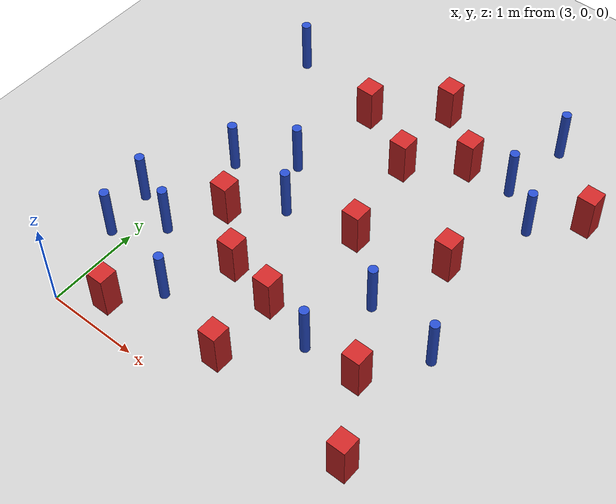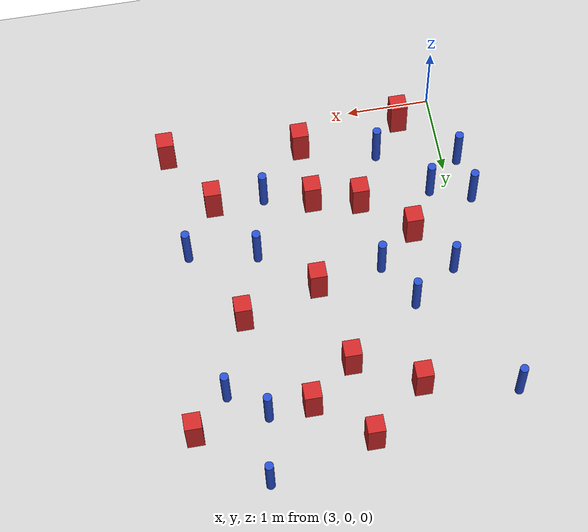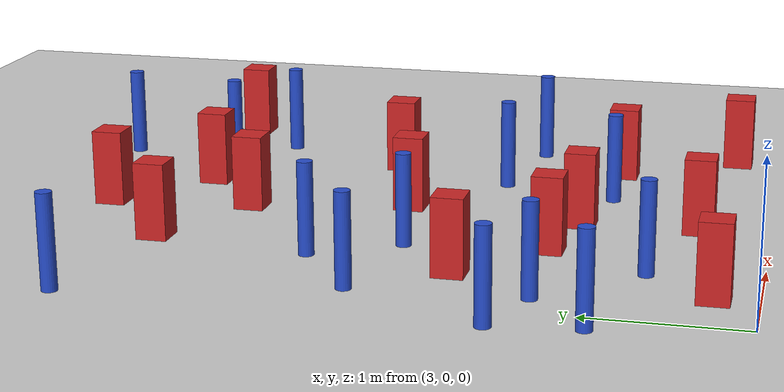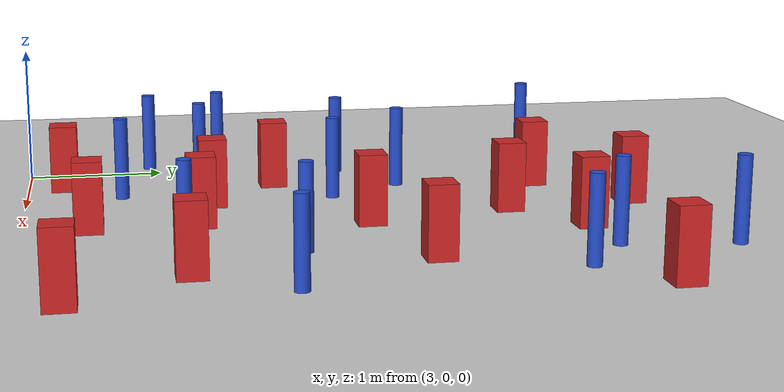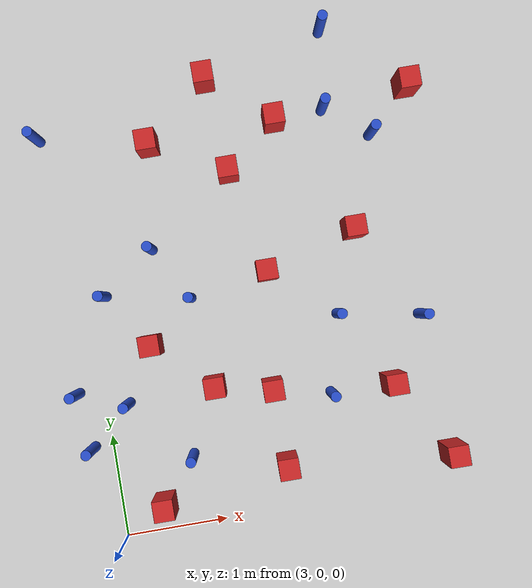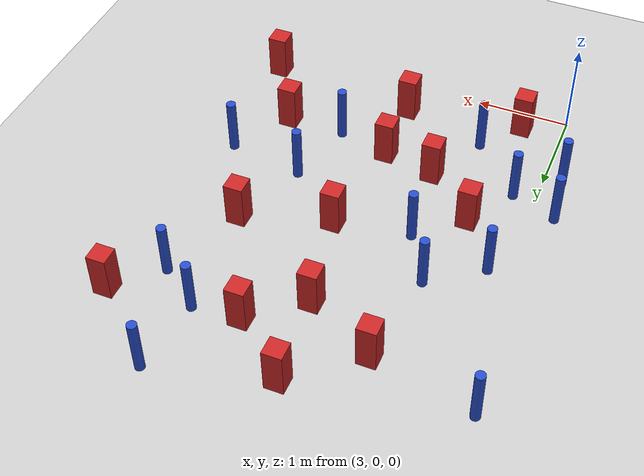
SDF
<sdf version="1.6">
 <world name="default">
  <model name="ground_plane">
   <static>1</static>
   <link name="link">
    <collision name="collision">
     <geometry><plane><normal>0 0 1</normal><size>100 100</size></plane></geometry>
     <surface><friction><ode><mu>100</mu><mu2>50</mu2></ode></friction></surface>
    </collision>
    <visual name="visual">
     <cast_shadows>0</cast_shadows>
     <geometry><plane><normal>0 0 1</normal><size>100 100</size></plane></geometry>
     <material>
      <ambient>1.0 1.0 1.0 1.0</ambient>
      <diffuse>0.8 0.8 0.8 1.0</diffuse>
      <specular>0.01 0.01 0.01 1.000000</specular>
     </material>
    </visual>
   </link>
  </model>
  <model name="pole_obstacle25">
   <static>true</static>
   <pose>2.74840885819 1.47649619067 7.38925637345e-09 -8.471706928e-08 1.24976765152e-08 -1.74513093012e-07</pose>
   <link name="link">
    <pose>0 0 0.3 0 -0 0</pose>
    <inertial>
     <mass>1</mass>
     <inertia><ixx>0.145833</ixx><ixy>0</ixy><ixz>0</ixz><iyy>0.145833</iyy><iyz>0</iyz><izz>0.125</izz></inertia>
    </inertial>
    <collision name="collision">
     <geometry><cylinder><radius>0.05</radius><length>.6</length></cylinder></geometry>
    </collision>
    <visual name="visual">
     <geometry><cylinder><radius>0.05</radius><length>.6</length></cylinder></geometry>
     <material>
      <script><name>Gazebo/Blue</name><uri>file://media/materials/scripts/gazebo.material</uri></script>
     </material>
    </visual>
   </link>
  </model>
  <model name="pole_obstacle28">
   <static>true</static>
   <pose>5.61331978366 3.88643642091 7.38925637345e-09 -8.47170692798e-08 1.24976764937e-08 -1.74513093023e-07</pose>
   <link name="link">
    <pose>0 0 0.3 0 -0 0</pose>
    <inertial>
     <mass>1</mass>
     <inertia><ixx>0.145833</ixx><ixy>0</ixy><ixz>0</ixz><iyy>0.145833</iyy><iyz>0</iyz><izz>0.125</izz></inertia>
    </inertial>
    <collision name="collision">
     <geometry><cylinder><radius>0.05</radius><length>.6</length></cylinder></geometry>
    </collision>
    <visual name="visual">
     <geometry><cylinder><radius>0.05</radius><length>.6</length></cylinder></geometry>
     <material>
      <script><name>Gazebo/Blue</name><uri>file://media/materials/scripts/gazebo.material</uri></script>
     </material>
    </visual>
   </link>
  </model>
  <model name="square_post_obstacle35">
   <static>true</static>
   <pose>4.49472661884 4.36413959373 1.91545236811e-07 -7.35059704564e-06 1.12565212e-07 2.39332434364e-05</pose>
   <link name="link">
    <pose>0 0 0.25 0 -0 0</pose>
    <inertial>
     <mass>100</mass>
     <inertia>
      <ixx>0.166667</ixx>
      <ixy>0</ixy>
      <ixz>0</ixz>
      <iyy>0.166667</iyy>
      <iyz>0</iyz>
      <izz>0.166667</izz>
     </inertia>
    </inertial>
    <collision name="collision"><geometry><box><size>.2 .2 .5</size></box></geometry></collision>
    <visual name="visual">
     <geometry><box><size>.2 .2 .5</size></box></geometry>
     <material>
      <script><name>Gazebo/Red</name><uri>file://media/materials/scripts/gazebo.material</uri></script>
     </material>
    </visual>
   </link>
  </model>
  <model name="pole_obstacle56">
   <static>true</static>
   <pose>2.81671026725 0.924290170854 7.38925637345e-09 -8.471706928e-08 1.24976765177e-08 -1.74513093012e-07</pose>
   <link name="link">
    <pose>0 0 0.3 0 -0 0</pose>
    <inertial>
     <mass>1</mass>
     <inertia><ixx>0.145833</ixx><ixy>0</ixy><ixz>0</ixz><iyy>0.145833</iyy><iyz>0</iyz><izz>0.125</izz></inertia>
    </inertial>
    <collision name="collision">
     <geometry><cylinder><radius>0.05</radius><length>.6</length></cylinder></geometry>
    </collision>
    <visual name="visual">
     <geometry><cylinder><radius>0.05</radius><length>.6</length></cylinder></geometry>
     <material>
      <script><name>Gazebo/Blue</name><uri>file://media/materials/scripts/gazebo.material</uri></script>
     </material>
    </visual>
   </link>
  </model>
  <model name="square_post_obstacle72">
   <static>true</static>
   <pose>5.7117779515 2.65050151546 1.91545236811e-07 -7.35059704564e-06 1.12565212e-07 2.39332434364e-05</pose>
   <link name="link">
    <pose>0 0 0.25 0 -0 0</pose>
    <inertial>
     <mass>100</mass>
     <inertia>
      <ixx>0.166667</ixx>
      <ixy>0</ixy>
      <ixz>0</ixz>
      <iyy>0.166667</iyy>
      <iyz>0</iyz>
      <izz>0.166667</izz>
     </inertia>
    </inertial>
    <collision name="collision"><geometry><box><size>.2 .2 .5</size></box></geometry></collision>
    <visual name="visual">
     <geometry><box><size>.2 .2 .5</size></box></geometry>
     <material>
      <script><name>Gazebo/Red</name><uri>file://media/materials/scripts/gazebo.material</uri></script>
     </material>
    </visual>
   </link>
  </model>
  <model name="pole_obstacle84">
   <static>true</static>
   <pose>6.04603668709 3.55796607895 7.38925637345e-09 -8.47170692798e-08 1.24976764937e-08 -1.74513093023e-07</pose>
   <link name="link">
    <pose>0 0 0.3 0 -0 0</pose>
    <inertial>
     <mass>1</mass>
     <inertia><ixx>0.145833</ixx><ixy>0</ixy><ixz>0</ixz><iyy>0.145833</iyy><iyz>0</iyz><izz>0.125</izz></inertia>
    </inertial>
    <collision name="collision">
     <geometry><cylinder><radius>0.05</radius><length>.6</length></cylinder></geometry>
    </collision>
    <visual name="visual">
     <geometry><cylinder><radius>0.05</radius><length>.6</length></cylinder></geometry>
     <material>
      <script><name>Gazebo/Blue</name><uri>file://media/materials/scripts/gazebo.material</uri></script>
     </material>
    </visual>
   </link>
  </model>
  <model name="square_post_obstacle80">
   <static>true</static>
   <pose>4.66591766662 1.21706297758 1.91545236811e-07 -7.35059704564e-06 1.12565212e-07 2.39332434364e-05</pose>
   <link name="link">
    <pose>0 0 0.25 0 -0 0</pose>
    <inertial>
     <mass>100</mass>
     <inertia>
      <ixx>0.166667</ixx>
      <ixy>0</ixy>
      <ixz>0</ixz>
      <iyy>0.166667</iyy>
      <iyz>0</iyz>
      <izz>0.166667</izz>
     </inertia>
    </inertial>
    <collision name="collision"><geometry><box><size>.2 .2 .5</size></box></geometry></collision>
    <visual name="visual">
     <geometry><box><size>.2 .2 .5</size></box></geometry>
     <material>
      <script><name>Gazebo/Red</name><uri>file://media/materials/scripts/gazebo.material</uri></script>
     </material>
    </visual>
   </link>
  </model>
  <model name="pole_obstacle99">
   <static>true</static>
   <pose>5.23298798825 1.07632659652 7.38925637345e-09 -8.471706928e-08 1.24976765134e-08 -1.74513093015e-07</pose>
   <link name="link">
    <pose>0 0 0.3 0 -0 0</pose>
    <inertial>
     <mass>1</mass>
     <inertia><ixx>0.145833</ixx><ixy>0</ixy><ixz>0</ixz><iyy>0.145833</iyy><iyz>0</iyz><izz>0.125</izz></inertia>
    </inertial>
    <collision name="collision">
     <geometry><cylinder><radius>0.05</radius><length>.6</length></cylinder></geometry>
    </collision>
    <visual name="visual">
     <geometry><cylinder><radius>0.05</radius><length>.6</length></cylinder></geometry>
     <material>
      <script><name>Gazebo/Blue</name><uri>file://media/materials/scripts/gazebo.material</uri></script>
     </material>
    </visual>
   </link>
  </model>
  <model name="square_post_obstacle96">
   <static>true</static>
   <pose>6.30606154885 0.309462328571 1.91545236811e-07 -7.35059704564e-06 1.12565212e-07 2.39332434364e-05</pose>
   <link name="link">
    <pose>0 0 0.25 0 -0 0</pose>
    <inertial>
     <mass>100</mass>
     <inertia>
      <ixx>0.166667</ixx>
      <ixy>0</ixy>
      <ixz>0</ixz>
      <iyy>0.166667</iyy>
      <iyz>0</iyz>
      <izz>0.166667</izz>
     </inertia>
    </inertial>
    <collision name="collision"><geometry><box><size>.2 .2 .5</size></box></geometry></collision>
    <visual name="visual">
     <geometry><box><size>.2 .2 .5</size></box></geometry>
     <material>
      <script><name>Gazebo/Red</name><uri>file://media/materials/scripts/gazebo.material</uri></script>
     </material>
    </visual>
   </link>
  </model>
  <model name="square_post_obstacle98">
   <static>true</static>
   <pose>4.10705369206 1.33619412559 1.91545236811e-07 -7.35059704564e-06 1.12565212e-07 2.39332434364e-05</pose>
   <link name="link">
    <pose>0 0 0.25 0 -0 0</pose>
    <inertial>
     <mass>100</mass>
     <inertia>
      <ixx>0.166667</ixx>
      <ixy>0</ixy>
      <ixz>0</ixz>
      <iyy>0.166667</iyy>
      <iyz>0</iyz>
      <izz>0.166667</izz>
     </inertia>
    </inertial>
    <collision name="collision"><geometry><box><size>.2 .2 .5</size></box></geometry></collision>
    <visual name="visual">
     <geometry><box><size>.2 .2 .5</size></box></geometry>
     <material>
      <script><name>Gazebo/Red</name><uri>file://media/materials/scripts/gazebo.material</uri></script>
     </material>
    </visual>
   </link>
  </model>
  <model name="pole_obstacle107">
   <static>true</static>
   <pose>3.78068407534 0.6943120413 7.38925637345e-09 -8.471706928e-08 1.24976765177e-08 -1.74513093012e-07</pose>
   <link name="link">
    <pose>0 0 0.3 0 -0 0</pose>
    <inertial>
     <mass>1</mass>
     <inertia><ixx>0.145833</ixx><ixy>0</ixy><ixz>0</ixz><iyy>0.145833</iyy><iyz>0</iyz><izz>0.125</izz></inertia>
    </inertial>
    <collision name="collision">
     <geometry><cylinder><radius>0.05</radius><length>.6</length></cylinder></geometry>
    </collision>
    <visual name="visual">
     <geometry><cylinder><radius>0.05</radius><length>.6</length></cylinder></geometry>
     <material>
      <script><name>Gazebo/Blue</name><uri>file://media/materials/scripts/gazebo.material</uri></script>
     </material>
    </visual>
   </link>
  </model>
  <model name="square_post_obstacle129">
   <static>true</static>
   <pose>5.10952692283 3.8490213124 1.91545236811e-07 -7.35059704564e-06 1.12565212e-07 2.39332434364e-05</pose>
   <link name="link">
    <pose>0 0 0.25 0 -0 0</pose>
    <inertial>
     <mass>100</mass>
     <inertia>
      <ixx>0.166667</ixx>
      <ixy>0</ixy>
      <ixz>0</ixz>
      <iyy>0.166667</iyy>
      <iyz>0</iyz>
      <izz>0.166667</izz>
     </inertia>
    </inertial>
    <collision name="collision"><geometry><box><size>.2 .2 .5</size></box></geometry></collision>
    <visual name="visual">
     <geometry><box><size>.2 .2 .5</size></box></geometry>
     <material>
      <script><name>Gazebo/Red</name><uri>file://media/materials/scripts/gazebo.material</uri></script>
     </material>
    </visual>
   </link>
  </model>
  <model name="square_post_obstacle135">
   <static>true</static>
   <pose>4.58000297488 3.41694430325 1.91545236811e-07 -7.35059704564e-06 1.12565212e-07 2.39332434364e-05</pose>
   <link name="link">
    <pose>0 0 0.25 0 -0 0</pose>
    <inertial>
     <mass>100</mass>
     <inertia>
      <ixx>0.166667</ixx>
      <ixy>0</ixy>
      <ixz>0</ixz>
      <iyy>0.166667</iyy>
      <iyz>0</iyz>
      <izz>0.166667</izz>
     </inertia>
    </inertial>
    <collision name="collision"><geometry><box><size>.2 .2 .5</size></box></geometry></collision>
    <visual name="visual">
     <geometry><box><size>.2 .2 .5</size></box></geometry>
     <material>
      <script><name>Gazebo/Red</name><uri>file://media/materials/scripts/gazebo.material</uri></script>
     </material>
    </visual>
   </link>
  </model>
  <model name="square_post_obstacle138">
   <static>true</static>
   <pose>5.8442672942 1.08039177608 1.91545236811e-07 -7.35059704564e-06 1.12565212e-07 2.39332434364e-05</pose>
   <link name="link">
    <pose>0 0 0.25 0 -0 0</pose>
    <inertial>
     <mass>100</mass>
     <inertia>
      <ixx>0.166667</ixx>
      <ixy>0</ixy>
      <ixz>0</ixz>
      <iyy>0.166667</iyy>
      <iyz>0</iyz>
      <izz>0.166667</izz>
     </inertia>
    </inertial>
    <collision name="collision"><geometry><box><size>.2 .2 .5</size></box></geometry></collision>
    <visual name="visual">
     <geometry><box><size>.2 .2 .5</size></box></geometry>
     <material>
      <script><name>Gazebo/Red</name><uri>file://media/materials/scripts/gazebo.material</uri></script>
     </material>
    </visual>
   </link>
  </model>
  <model name="pole_obstacle146">
   <static>true</static>
   <pose>6.2349067922 1.70053526463 7.38925637345e-09 -8.471706928e-08 1.24976765134e-08 -1.74513093015e-07</pose>
   <link name="link">
    <pose>0 0 0.3 0 -0 0</pose>
    <inertial>
     <mass>1</mass>
     <inertia><ixx>0.145833</ixx><ixy>0</ixy><ixz>0</ixz><iyy>0.145833</iyy><iyz>0</iyz><izz>0.125</izz></inertia>
    </inertial>
    <collision name="collision">
     <geometry><cylinder><radius>0.05</radius><length>.6</length></cylinder></geometry>
    </collision>
    <visual name="visual">
     <geometry><cylinder><radius>0.05</radius><length>.6</length></cylinder></geometry>
     <material>
      <script><name>Gazebo/Blue</name><uri>file://media/materials/scripts/gazebo.material</uri></script>
     </material>
    </visual>
   </link>
  </model>
  <model name="pole_obstacle163">
   <static>true</static>
   <pose>3.23194769773 1.30127650916 7.38925637345e-09 -8.471706928e-08 1.24976765152e-08 -1.74513093012e-07</pose>
   <link name="link">
    <pose>0 0 0.3 0 -0 0</pose>
    <inertial>
     <mass>1</mass>
     <inertia><ixx>0.145833</ixx><ixy>0</ixy><ixz>0</ixz><iyy>0.145833</iyy><iyz>0</iyz><izz>0.125</izz></inertia>
    </inertial>
    <collision name="collision">
     <geometry><cylinder><radius>0.05</radius><length>.6</length></cylinder></geometry>
    </collision>
    <visual name="visual">
     <geometry><cylinder><radius>0.05</radius><length>.6</length></cylinder></geometry>
     <material>
      <script><name>Gazebo/Blue</name><uri>file://media/materials/scripts/gazebo.material</uri></script>
     </material>
    </visual>
   </link>
  </model>
  <model name="square_post_obstacle158">
   <static>true</static>
   <pose>3.83910293947 3.80970168864 1.91545236811e-07 -7.35059704564e-06 1.12565212e-07 2.39332434364e-05</pose>
   <link name="link">
    <pose>0 0 0.25 0 -0 0</pose>
    <inertial>
     <mass>100</mass>
     <inertia>
      <ixx>0.166667</ixx>
      <ixy>0</ixy>
      <ixz>0</ixz>
      <iyy>0.166667</iyy>
      <iyz>0</iyz>
      <izz>0.166667</izz>
     </inertia>
    </inertial>
    <collision name="collision"><geometry><box><size>.2 .2 .5</size></box></geometry></collision>
    <visual name="visual">
     <geometry><box><size>.2 .2 .5</size></box></geometry>
     <material>
      <script><name>Gazebo/Red</name><uri>file://media/materials/scripts/gazebo.material</uri></script>
     </material>
    </visual>
   </link>
  </model>
  <model name="square_post_obstacle162">
   <static>true</static>
   <pose>6.4665036675 3.9785647192 1.91545236811e-07 -7.35059704564e-06 1.12565212e-07 2.39332434364e-05</pose>
   <link name="link">
    <pose>0 0 0.25 0 -0 0</pose>
    <inertial>
     <mass>100</mass>
     <inertia>
      <ixx>0.166667</ixx>
      <ixy>0</ixy>
      <ixz>0</ixz>
      <iyy>0.166667</iyy>
      <iyz>0</iyz>
      <izz>0.166667</izz>
     </inertia>
    </inertial>
    <collision name="collision"><geometry><box><size>.2 .2 .5</size></box></geometry></collision>
    <visual name="visual">
     <geometry><box><size>.2 .2 .5</size></box></geometry>
     <material>
      <script><name>Gazebo/Red</name><uri>file://media/materials/scripts/gazebo.material</uri></script>
     </material>
    </visual>
   </link>
  </model>
  <model name="pole_obstacle175">
   <static>true</static>
   <pose>5.7197548134 4.67722303747 7.38925637345e-09 -8.47170692796e-08 1.24976764786e-08 -1.74513093032e-07</pose>
   <link name="link">
    <pose>0 0 0.3 0 -0 0</pose>
    <inertial>
     <mass>1</mass>
     <inertia><ixx>0.145833</ixx><ixy>0</ixy><ixz>0</ixz><iyy>0.145833</iyy><iyz>0</iyz><izz>0.125</izz></inertia>
    </inertial>
    <collision name="collision">
     <geometry><cylinder><radius>0.05</radius><length>.6</length></cylinder></geometry>
    </collision>
    <visual name="visual">
     <geometry><cylinder><radius>0.05</radius><length>.6</length></cylinder></geometry>
     <material>
      <script><name>Gazebo/Blue</name><uri>file://media/materials/scripts/gazebo.material</uri></script>
     </material>
    </visual>
   </link>
  </model>
  <model name="pole_obstacle177">
   <static>true</static>
   <pose>5.42389768005 1.83849299928 7.38925637345e-09 -8.471706928e-08 1.24976765134e-08 -1.74513093015e-07</pose>
   <link name="link">
    <pose>0 0 0.3 0 -0 0</pose>
    <inertial>
     <mass>1</mass>
     <inertia><ixx>0.145833</ixx><ixy>0</ixy><ixz>0</ixz><iyy>0.145833</iyy><iyz>0</iyz><izz>0.125</izz></inertia>
    </inertial>
    <collision name="collision">
     <geometry><cylinder><radius>0.05</radius><length>.6</length></cylinder></geometry>
    </collision>
    <visual name="visual">
     <geometry><cylinder><radius>0.05</radius><length>.6</length></cylinder></geometry>
     <material>
      <script><name>Gazebo/Blue</name><uri>file://media/materials/scripts/gazebo.material</uri></script>
     </material>
    </visual>
   </link>
  </model>
  <model name="pole_obstacle189">
   <static>true</static>
   <pose>3.70158733529 2.7754520966 7.38925637345e-09 -8.47170692798e-08 1.24976764939e-08 -1.74513093025e-07</pose>
   <link name="link">
    <pose>0 0 0.3 0 -0 0</pose>
    <inertial>
     <mass>1</mass>
     <inertia><ixx>0.145833</ixx><ixy>0</ixy><ixz>0</ixz><iyy>0.145833</iyy><iyz>0</iyz><izz>0.125</izz></inertia>
    </inertial>
    <collision name="collision">
     <geometry><cylinder><radius>0.05</radius><length>.6</length></cylinder></geometry>
    </collision>
    <visual name="visual">
     <geometry><cylinder><radius>0.05</radius><length>.6</length></cylinder></geometry>
     <material>
      <script><name>Gazebo/Blue</name><uri>file://media/materials/scripts/gazebo.material</uri></script>
     </material>
    </visual>
   </link>
  </model>
  <model name="square_post_obstacle200">
   <static>true</static>
   <pose>3.55322055199 1.83694456039 1.91545236811e-07 -7.35059704564e-06 1.12565212e-07 2.39332434364e-05</pose>
   <link name="link">
    <pose>0 0 0.25 0 -0 0</pose>
    <inertial>
     <mass>100</mass>
     <inertia>
      <ixx>0.166667</ixx>
      <ixy>0</ixy>
      <ixz>0</ixz>
      <iyy>0.166667</iyy>
      <iyz>0</iyz>
      <izz>0.166667</izz>
     </inertia>
    </inertial>
    <collision name="collision"><geometry><box><size>.2 .2 .5</size></box></geometry></collision>
    <visual name="visual">
     <geometry><box><size>.2 .2 .5</size></box></geometry>
     <material>
      <script><name>Gazebo/Red</name><uri>file://media/materials/scripts/gazebo.material</uri></script>
     </material>
    </visual>
   </link>
  </model>
  <model name="square_post_obstacle203">
   <static>true</static>
   <pose>4.68693141641 0.457348028149 1.91545236811e-07 -7.35059704564e-06 1.12565212e-07 2.39332434364e-05</pose>
   <link name="link">
    <pose>0 0 0.25 0 -0 0</pose>
    <inertial>
     <mass>100</mass>
     <inertia>
      <ixx>0.166667</ixx>
      <ixy>0</ixy>
      <ixz>0</ixz>
      <iyy>0.166667</iyy>
      <iyz>0</iyz>
      <izz>0.166667</izz>
     </inertia>
    </inertial>
    <collision name="collision"><geometry><box><size>.2 .2 .5</size></box></geometry></collision>
    <visual name="visual">
     <geometry><box><size>.2 .2 .5</size></box></geometry>
     <material>
      <script><name>Gazebo/Red</name><uri>file://media/materials/scripts/gazebo.material</uri></script>
     </material>
    </visual>
   </link>
  </model>
  <model name="square_post_obstacle206">
   <static>true</static>
   <pose>3.43616653491 0.268916572859 1.91545236811e-07 -7.35059704564e-06 1.12565212e-07 2.39332434364e-05</pose>
   <link name="link">
    <pose>0 0 0.25 0 -0 0</pose>
    <inertial>
     <mass>100</mass>
     <inertia>
      <ixx>0.166667</ixx>
      <ixy>0</ixy>
      <ixz>0</ixz>
      <iyy>0.166667</iyy>
      <iyz>0</iyz>
      <izz>0.166667</izz>
     </inertia>
    </inertial>
    <collision name="collision"><geometry><box><size>.2 .2 .5</size></box></geometry></collision>
    <visual name="visual">
     <geometry><box><size>.2 .2 .5</size></box></geometry>
     <material>
      <script><name>Gazebo/Red</name><uri>file://media/materials/scripts/gazebo.material</uri></script>
     </material>
    </visual>
   </link>
  </model>
  <model name="pole_obstacle208">
   <static>true</static>
   <pose>4.00805508356 2.23429139502 7.38925637345e-09 -8.47170692799e-08 1.24976765e-08 -1.7451309302e-07</pose>
   <link name="link">
    <pose>0 0 0.3 0 -0 0</pose>
    <inertial>
     <mass>1</mass>
     <inertia><ixx>0.145833</ixx><ixy>0</ixy><ixz>0</ixz><iyy>0.145833</iyy><iyz>0</iyz><izz>0.125</izz></inertia>
    </inertial>
    <collision name="collision">
     <geometry><cylinder><radius>0.05</radius><length>.6</length></cylinder></geometry>
    </collision>
    <visual name="visual">
     <geometry><cylinder><radius>0.05</radius><length>.6</length></cylinder></geometry>
     <material>
      <script><name>Gazebo/Blue</name><uri>file://media/materials/scripts/gazebo.material</uri></script>
     </material>
    </visual>
   </link>
  </model>
  <model name="pole_obstacle211">
   <static>true</static>
   <pose>3.16684485421 2.38792437919 7.38925637345e-09 -8.47170692798e-08 1.24976764939e-08 -1.74513093025e-07</pose>
   <link name="link">
    <pose>0 0 0.3 0 -0 0</pose>
    <inertial>
     <mass>1</mass>
     <inertia><ixx>0.145833</ixx><ixy>0</ixy><ixz>0</ixz><iyy>0.145833</iyy><iyz>0</iyz><izz>0.125</izz></inertia>
    </inertial>
    <collision name="collision">
     <geometry><cylinder><radius>0.05</radius><length>.6</length></cylinder></geometry>
    </collision>
    <visual name="visual">
     <geometry><cylinder><radius>0.05</radius><length>.6</length></cylinder></geometry>
     <material>
      <script><name>Gazebo/Blue</name><uri>file://media/materials/scripts/gazebo.material</uri></script>
     </material>
    </visual>
   </link>
  </model>
  <model name="square_post_obstacle214">
   <static>true</static>
   <pose>4.79573869511 2.37560151652 1.91545236811e-07 -7.35059704564e-06 1.12565212e-07 2.39332434364e-05</pose>
   <link name="link">
    <pose>0 0 0.25 0 -0 0</pose>
    <inertial>
     <mass>100</mass>
     <inertia>
      <ixx>0.166667</ixx>
      <ixy>0</ixy>
      <ixz>0</ixz>
      <iyy>0.166667</iyy>
      <iyz>0</iyz>
      <izz>0.166667</izz>
     </inertia>
    </inertial>
    <collision name="collision"><geometry><box><size>.2 .2 .5</size></box></geometry></collision>
    <visual name="visual">
     <geometry><box><size>.2 .2 .5</size></box></geometry>
     <material>
      <script><name>Gazebo/Red</name><uri>file://media/materials/scripts/gazebo.material</uri></script>
     </material>
    </visual>
   </link>
  </model>
  <model name="pole_obstacle227">
   <static>true</static>
   <pose>2.75861000957 4.04391002078 7.38925637345e-09 -8.47170692799e-08 1.24976765036e-08 -1.74513093019e-07</pose>
   <link name="link">
    <pose>0 0 0.3 0 -0 0</pose>
    <inertial>
     <mass>1</mass>
     <inertia><ixx>0.145833</ixx><ixy>0</ixy><ixz>0</ixz><iyy>0.145833</iyy><iyz>0</iyz><izz>0.125</izz></inertia>
    </inertial>
    <collision name="collision">
     <geometry><cylinder><radius>0.05</radius><length>.6</length></cylinder></geometry>
    </collision>
    <visual name="visual">
     <geometry><cylinder><radius>0.05</radius><length>.6</length></cylinder></geometry>
     <material>
      <script><name>Gazebo/Blue</name><uri>file://media/materials/scripts/gazebo.material</uri></script>
     </material>
    </visual>
   </link>
  </model>
 </world>
</sdf>
